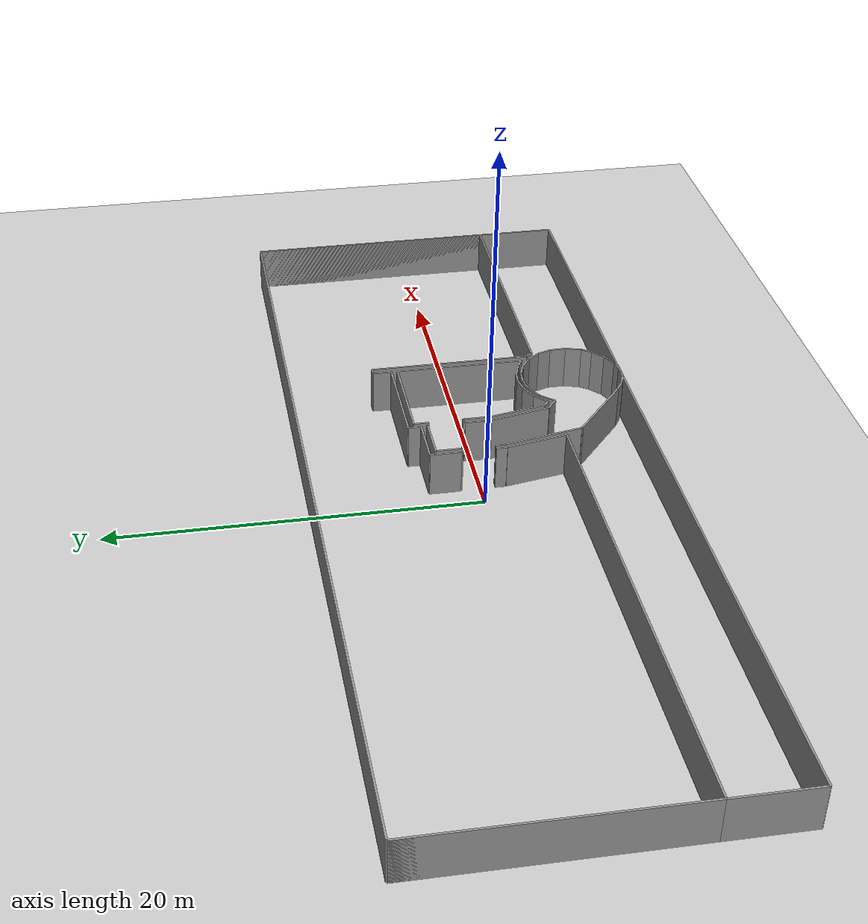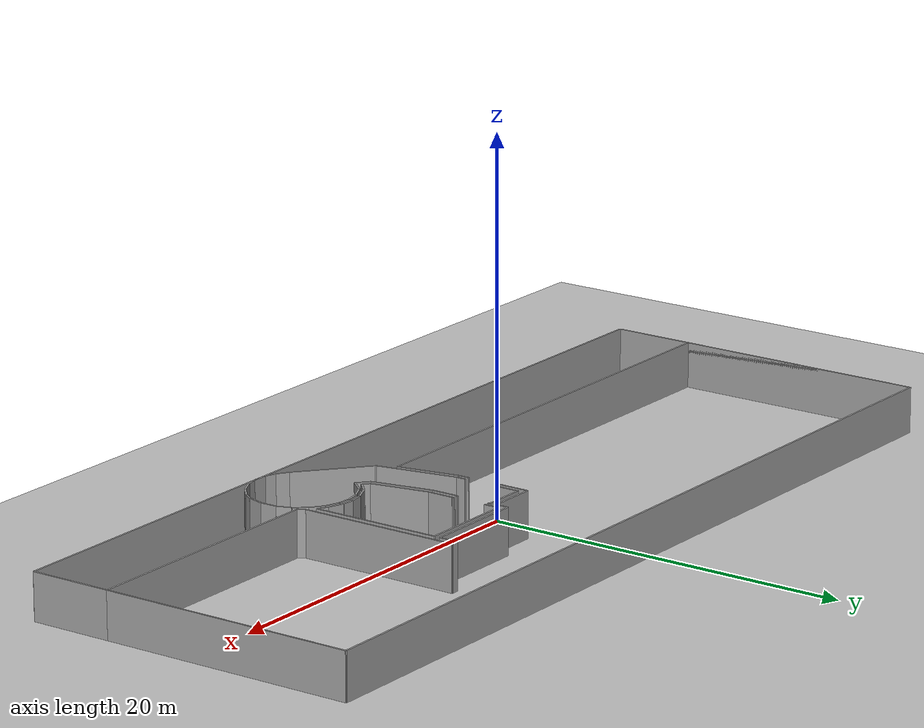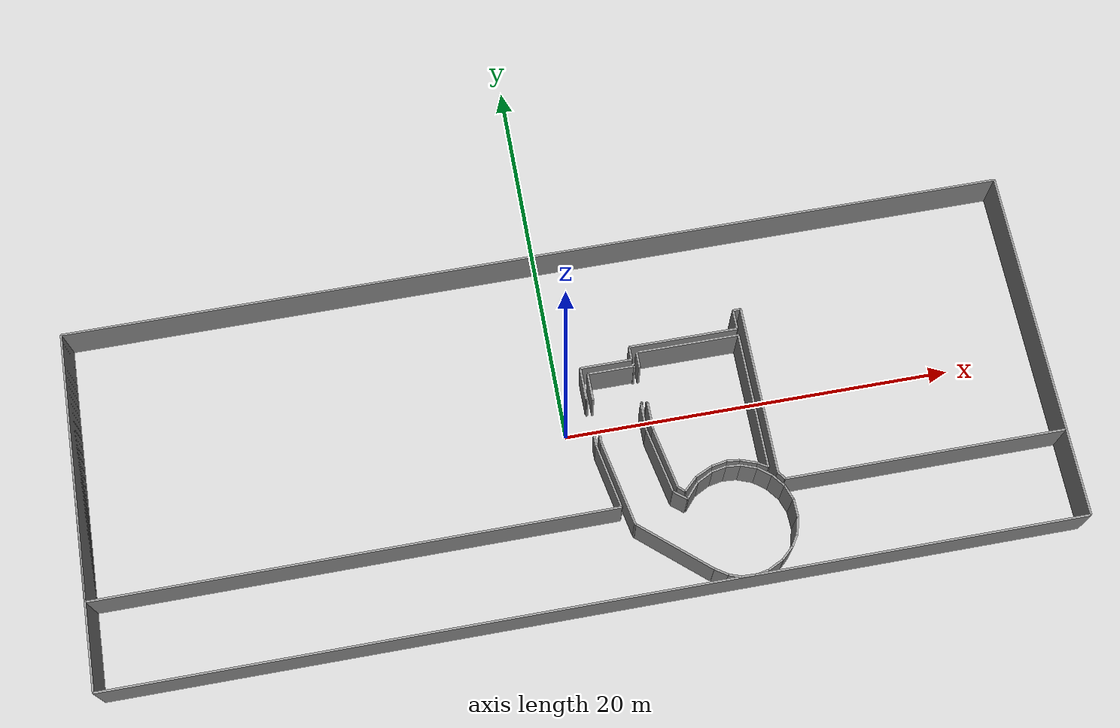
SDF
<sdf version="1.6">
  <world name="default">
    <light name="sun" type="directional">
      <cast_shadows>1</cast_shadows>
      <pose frame="">0 0 10 0 -0 0</pose>
      <diffuse>0.8 0.8 0.8 1</diffuse>
      <specular>0.1 0.1 0.1 1</specular>
      <attenuation>
        <range>1000</range>
        <constant>0.9</constant>
        <linear>0.01</linear>
        <quadratic>0.001</quadratic>
      </attenuation>
      <direction>-0.5 0.5 -1</direction>
    </light>
    <model name="ground_plane">
      <static>1</static>
      <link name="link">
        <collision name="collision">
          <geometry>
            <plane>
              <normal>0 0 1</normal>
              <size>100 100</size>
            </plane>
          </geometry>
          <surface>
            <friction>
              <ode>
                <mu>100</mu>
                <mu2>50</mu2>
              </ode>
              <torsional>
                <ode />
              </torsional>
            </friction>
            <contact>
              <ode />
            </contact>
            <bounce />
          </surface>
          <max_contacts>10</max_contacts>
        </collision>
        <visual name="visual">
          <cast_shadows>0</cast_shadows>
          <geometry>
            <plane>
              <normal>0 0 1</normal>
              <size>100 100</size>
            </plane>
          </geometry>
          <material>
            <script>
              <uri>file://media/materials/scripts/gazebo.material</uri>
              <name>Gazebo/Grey</name>
            </script>
          </material>
        </visual>
        <self_collide>0</self_collide>
        <kinematic>0</kinematic>
        <gravity>1</gravity>
      </link>
    </model>
    <gravity>0 0 -9.8</gravity>
    <magnetic_field>6e-06 2.3e-05 -4.2e-05</magnetic_field>
    <atmosphere type="adiabatic" />
    <physics default="0" name="default_physics" type="ode">
      <max_step_size>0.001</max_step_size>
      <real_time_factor>1</real_time_factor>
      <real_time_update_rate>1000</real_time_update_rate>
    </physics>
    <scene>
      <ambient>0.4 0.4 0.4 1</ambient>
      <background>0.7 0.7 0.7 1</background>
      <shadows>1</shadows>
    </scene>
    <spherical_coordinates>
      <surface_model>EARTH_WGS84</surface_model>
      <latitude_deg>0</latitude_deg>
      <longitude_deg>0</longitude_deg>
      <elevation>0</elevation>
      <heading_deg>0</heading_deg>
    </spherical_coordinates>
  <model name="0510028106_Layout1">
		<static>1</static>
		<link name="Wall_0">
			<collision name="Wall_0_Collision">
				<geometry>
					<box>
						<size>13.9522704884 0.1 2.5</size>
					</box>
				</geometry>
				<pose frame="">6.97613524421 0 1.25 0 0 0</pose>
			</collision>
			<visual name="Wall_0_Visual">
				<pose frame="">6.97613524421 0 1.25 0 0 0</pose>
				<geometry>
					<box>
						<size>13.9522704884 0.1 2.5</size>
					</box>
				</geometry>
				<material>
					<script>
						<uri>file://media/materials/scripts/gazebo.material</uri>
						<name>Gazebo/Grey</name>
					</script>
					<ambient>1 1 1 1</ambient>
				</material>
			</visual>
			<pose frame="">0.0 -13.9522704884 0 0 0 1.57079632679</pose>
		</link>
		<link name="Wall_1">
			<collision name="Wall_1_Collision">
				<geometry>
					<box>
						<size>48.8797229019 0.1 2.5</size>
					</box>
				</geometry>
				<pose frame="">24.439861451 0 1.25 0 0 0</pose>
			</collision>
			<visual name="Wall_1_Visual">
				<pose frame="">24.439861451 0 1.25 0 0 0</pose>
				<geometry>
					<box>
						<size>48.8797229019 0.1 2.5</size>
					</box>
				</geometry>
				<material>
					<script>
						<uri>file://media/materials/scripts/gazebo.material</uri>
						<name>Gazebo/Grey</name>
					</script>
					<ambient>1 1 1 1</ambient>
				</material>
			</visual>
			<pose frame="">0.0 -0.0 0 0 0 0.0</pose>
		</link>
		<link name="Wall_2">
			<collision name="Wall_2_Collision">
				<geometry>
					<box>
						<size>13.9220184944 0.1 2.5</size>
					</box>
				</geometry>
				<pose frame="">6.9610092472 0 1.25 0 0 0</pose>
			</collision>
			<visual name="Wall_2_Visual">
				<pose frame="">6.9610092472 0 1.25 0 0 0</pose>
				<geometry>
					<box>
						<size>13.9220184944 0.1 2.5</size>
					</box>
				</geometry>
				<material>
					<script>
						<uri>file://media/materials/scripts/gazebo.material</uri>
						<name>Gazebo/Grey</name>
					</script>
					<ambient>1 1 1 1</ambient>
				</material>
			</visual>
			<pose frame="">48.8797229019 -0.0 0 0 0 -1.57079632679</pose>
		</link>
		<link name="Wall_3">
			<collision name="Wall_3_Collision">
				<geometry>
					<box>
						<size>14.3327083797 0.1 2.5</size>
					</box>
				</geometry>
				<pose frame="">7.16635418984 0 1.25 0 0 0</pose>
			</collision>
			<visual name="Wall_3_Visual">
				<pose frame="">7.16635418984 0 1.25 0 0 0</pose>
				<geometry>
					<box>
						<size>14.3327083797 0.1 2.5</size>
					</box>
				</geometry>
				<material>
					<script>
						<uri>file://media/materials/scripts/gazebo.material</uri>
						<name>Gazebo/Grey</name>
					</script>
					<ambient>1 1 1 1</ambient>
				</material>
			</visual>
			<pose frame="">48.8797229019 -13.9220184944 0 0 0 3.14159265359</pose>
		</link>
		<link name="Wall_4">
			<collision name="Wall_4_Collision">
				<geometry>
					<box>
						<size>0.469867818756 0.1 2.5</size>
					</box>
				</geometry>
				<pose frame="">0.234933909378 0 1.25 0 0 0</pose>
			</collision>
			<visual name="Wall_4_Visual">
				<pose frame="">0.234933909378 0 1.25 0 0 0</pose>
				<geometry>
					<box>
						<size>0.469867818756 0.1 2.5</size>
					</box>
				</geometry>
				<material>
					<script>
						<uri>file://media/materials/scripts/gazebo.material</uri>
						<name>Gazebo/Grey</name>
					</script>
					<ambient>1 1 1 1</ambient>
				</material>
			</visual>
			<pose frame="">34.5470145222 -13.9220184944 0 0 0 2.22381992667</pose>
		</link>
		<link name="Wall_5">
			<collision name="Wall_5_Collision">
				<geometry>
					<box>
						<size>8.79544948997 0.1 2.5</size>
					</box>
				</geometry>
				<pose frame="">4.39772474499 0 1.25 0 0 0</pose>
			</collision>
			<visual name="Wall_5_Visual">
				<pose frame="">4.39772474499 0 1.25 0 0 0</pose>
				<geometry>
					<box>
						<size>8.79544948997 0.1 2.5</size>
					</box>
				</geometry>
				<material>
					<script>
						<uri>file://media/materials/scripts/gazebo.material</uri>
						<name>Gazebo/Grey</name>
					</script>
					<ambient>1 1 1 1</ambient>
				</material>
			</visual>
			<pose frame="">34.2615272173 -13.5488258286 0 0 0 1.57079632679</pose>
		</link>
		<link name="Wall_6">
			<collision name="Wall_6_Collision">
				<geometry>
					<box>
						<size>0.395182560615 0.1 2.5</size>
					</box>
				</geometry>
				<pose frame="">0.197591280308 0 1.25 0 0 0</pose>
			</collision>
			<visual name="Wall_6_Visual">
				<pose frame="">0.197591280308 0 1.25 0 0 0</pose>
				<geometry>
					<box>
						<size>0.395182560615 0.1 2.5</size>
					</box>
				</geometry>
				<material>
					<script>
						<uri>file://media/materials/scripts/gazebo.material</uri>
						<name>Gazebo/Grey</name>
					</script>
					<ambient>1 1 1 1</ambient>
				</material>
			</visual>
			<pose frame="">34.2615272173 -4.75337633862 0 0 0 3.14159265359</pose>
		</link>
		<link name="Wall_7">
			<collision name="Wall_7_Collision">
				<geometry>
					<box>
						<size>1.01013696018 0.1 2.5</size>
					</box>
				</geometry>
				<pose frame="">0.505068480092 0 1.25 0 0 0</pose>
			</collision>
			<visual name="Wall_7_Visual">
				<pose frame="">0.505068480092 0 1.25 0 0 0</pose>
				<geometry>
					<box>
						<size>1.01013696018 0.1 2.5</size>
					</box>
				</geometry>
				<material>
					<script>
						<uri>file://media/materials/scripts/gazebo.material</uri>
						<name>Gazebo/Grey</name>
					</script>
					<ambient>1 1 1 1</ambient>
				</material>
			</visual>
			<pose frame="">33.8663446566 -4.75337633862 0 0 0 -1.57079632679</pose>
		</link>
		<link name="Wall_8">
			<collision name="Wall_8_Collision">
				<geometry>
					<box>
						<size>5.59725444088 0.1 2.5</size>
					</box>
				</geometry>
				<pose frame="">2.79862722044 0 1.25 0 0 0</pose>
			</collision>
			<visual name="Wall_8_Visual">
				<pose frame="">2.79862722044 0 1.25 0 0 0</pose>
				<geometry>
					<box>
						<size>5.59725444088 0.1 2.5</size>
					</box>
				</geometry>
				<material>
					<script>
						<uri>file://media/materials/scripts/gazebo.material</uri>
						<name>Gazebo/Grey</name>
					</script>
					<ambient>1 1 1 1</ambient>
				</material>
			</visual>
			<pose frame="">33.8663446566 -5.7635132988 0 0 0 3.14159265359</pose>
		</link>
		<link name="Wall_9">
			<collision name="Wall_9_Collision">
				<geometry>
					<box>
						<size>0.687533763386 0.1 2.5</size>
					</box>
				</geometry>
				<pose frame="">0.343766881693 0 1.25 0 0 0</pose>
			</collision>
			<visual name="Wall_9_Visual">
				<pose frame="">0.343766881693 0 1.25 0 0 0</pose>
				<geometry>
					<box>
						<size>0.687533763386 0.1 2.5</size>
					</box>
				</geometry>
				<material>
					<script>
						<uri>file://media/materials/scripts/gazebo.material</uri>
						<name>Gazebo/Grey</name>
					</script>
					<ambient>1 1 1 1</ambient>
				</material>
			</visual>
			<pose frame="">28.2690902158 -5.7635132988 0 0 0 -1.57079632679</pose>
		</link>
		<link name="Wall_10">
			<collision name="Wall_10_Collision">
				<geometry>
					<box>
						<size>2.63815183196 0.1 2.5</size>
					</box>
				</geometry>
				<pose frame="">1.31907591598 0 1.25 0 0 0</pose>
			</collision>
			<visual name="Wall_10_Visual">
				<pose frame="">1.31907591598 0 1.25 0 0 0</pose>
				<geometry>
					<box>
						<size>2.63815183196 0.1 2.5</size>
					</box>
				</geometry>
				<material>
					<script>
						<uri>file://media/materials/scripts/gazebo.material</uri>
						<name>Gazebo/Grey</name>
					</script>
					<ambient>1 1 1 1</ambient>
				</material>
			</visual>
			<pose frame="">28.2690902158 -6.45104706219 0 0 0 3.14159265359</pose>
		</link>
		<link name="Wall_11">
			<collision name="Wall_11_Collision">
				<geometry>
					<box>
						<size>1.67974832375 0.1 2.5</size>
					</box>
				</geometry>
				<pose frame="">0.839874161874 0 1.25 0 0 0</pose>
			</collision>
			<visual name="Wall_11_Visual">
				<pose frame="">0.839874161874 0 1.25 0 0 0</pose>
				<geometry>
					<box>
						<size>1.67974832375 0.1 2.5</size>
					</box>
				</geometry>
				<material>
					<script>
						<uri>file://media/materials/scripts/gazebo.material</uri>
						<name>Gazebo/Grey</name>
					</script>
					<ambient>1 1 1 1</ambient>
				</material>
			</visual>
			<pose frame="">25.6309383838 -6.45104706219 0 0 0 -1.57079632679</pose>
		</link>
		<link name="Wall_12">
			<collision name="Wall_12_Collision">
				<geometry>
					<box>
						<size>0.0415647144809 0.1 2.5</size>
					</box>
				</geometry>
				<pose frame="">0.0207823572404 0 1.25 0 0 0</pose>
			</collision>
			<visual name="Wall_12_Visual">
				<pose frame="">0.0207823572404 0 1.25 0 0 0</pose>
				<geometry>
					<box>
						<size>0.0415647144809 0.1 2.5</size>
					</box>
				</geometry>
				<material>
					<script>
						<uri>file://media/materials/scripts/gazebo.material</uri>
						<name>Gazebo/Grey</name>
					</script>
					<ambient>1 1 1 1</ambient>
				</material>
			</visual>
			<pose frame="">25.6309383838 -8.13079538594 0 0 0 0.0</pose>
		</link>
		<link name="Wall_13">
			<collision name="Wall_13_Collision">
				<geometry>
					<box>
						<size>0.0812227906829 0.1 2.5</size>
					</box>
				</geometry>
				<pose frame="">0.0406113953415 0 1.25 0 0 0</pose>
			</collision>
			<visual name="Wall_13_Visual">
				<pose frame="">0.0406113953415 0 1.25 0 0 0</pose>
				<geometry>
					<box>
						<size>0.0812227906829 0.1 2.5</size>
					</box>
				</geometry>
				<material>
					<script>
						<uri>file://media/materials/scripts/gazebo.material</uri>
						<name>Gazebo/Grey</name>
					</script>
					<ambient>1 1 1 1</ambient>
				</material>
			</visual>
			<pose frame="">25.6725030983 -8.13079538594 0 0 0 -1.57079632679</pose>
		</link>
		<link name="Wall_14">
			<collision name="Wall_14_Collision">
				<geometry>
					<box>
						<size>0.588642791318 0.1 2.5</size>
					</box>
				</geometry>
				<pose frame="">0.294321395659 0 1.25 0 0 0</pose>
			</collision>
			<visual name="Wall_14_Visual">
				<pose frame="">0.294321395659 0 1.25 0 0 0</pose>
				<geometry>
					<box>
						<size>0.588642791318 0.1 2.5</size>
					</box>
				</geometry>
				<material>
					<script>
						<uri>file://media/materials/scripts/gazebo.material</uri>
						<name>Gazebo/Grey</name>
					</script>
					<ambient>1 1 1 1</ambient>
				</material>
			</visual>
			<pose frame="">25.6725030983 -9.97578569386 0 0 0 -1.57079632679</pose>
		</link>
		<link name="Wall_15">
			<collision name="Wall_15_Collision">
				<geometry>
					<box>
						<size>3.4107776043 0.1 2.5</size>
					</box>
				</geometry>
				<pose frame="">1.70538880215 0 1.25 0 0 0</pose>
			</collision>
			<visual name="Wall_15_Visual">
				<pose frame="">1.70538880215 0 1.25 0 0 0</pose>
				<geometry>
					<box>
						<size>3.4107776043 0.1 2.5</size>
					</box>
				</geometry>
				<material>
					<script>
						<uri>file://media/materials/scripts/gazebo.material</uri>
						<name>Gazebo/Grey</name>
					</script>
					<ambient>1 1 1 1</ambient>
				</material>
			</visual>
			<pose frame="">25.6725030983 -10.5644284852 0 0 0 -1.37911615983</pose>
		</link>
		<link name="Wall_16">
			<collision name="Wall_16_Collision">
				<geometry>
					<box>
						<size>26.3223151077 0.1 2.5</size>
					</box>
				</geometry>
				<pose frame="">13.1611575538 0 1.25 0 0 0</pose>
			</collision>
			<visual name="Wall_16_Visual">
				<pose frame="">13.1611575538 0 1.25 0 0 0</pose>
				<geometry>
					<box>
						<size>26.3223151077 0.1 2.5</size>
					</box>
				</geometry>
				<material>
					<script>
						<uri>file://media/materials/scripts/gazebo.material</uri>
						<name>Gazebo/Grey</name>
					</script>
					<ambient>1 1 1 1</ambient>
				</material>
			</visual>
			<pose frame="">26.3222854238 -13.9127395214 0 0 0 -3.14009084869</pose>
		</link>
		<link name="Wall_17">
			<collision name="Wall_17_Collision">
				<geometry>
					<box>
						<size>4.40999296401 0.1 2.5</size>
					</box>
				</geometry>
				<pose frame="">2.204996482 0 1.25 0 0 0</pose>
			</collision>
			<visual name="Wall_17_Visual">
				<pose frame="">2.204996482 0 1.25 0 0 0</pose>
				<geometry>
					<box>
						<size>4.40999296401 0.1 2.5</size>
					</box>
				</geometry>
				<material>
					<script>
						<uri>file://media/materials/scripts/gazebo.material</uri>
						<name>Gazebo/Grey</name>
					</script>
					<ambient>1 1 1 1</ambient>
				</material>
			</visual>
			<pose frame="">26.8126727891 -14.82716324 0 0 0 1.76771706361</pose>
		</link>
		<link name="Wall_18">
			<collision name="Wall_18_Collision">
				<geometry>
					<box>
						<size>0.505640471575 0.1 2.5</size>
					</box>
				</geometry>
				<pose frame="">0.252820235788 0 1.25 0 0 0</pose>
			</collision>
			<visual name="Wall_18_Visual">
				<pose frame="">0.252820235788 0 1.25 0 0 0</pose>
				<geometry>
					<box>
						<size>0.505640471575 0.1 2.5</size>
					</box>
				</geometry>
				<material>
					<script>
						<uri>file://media/materials/scripts/gazebo.material</uri>
						<name>Gazebo/Grey</name>
					</script>
					<ambient>1 1 1 1</ambient>
				</material>
			</visual>
			<pose frame="">25.9498554133 -10.5023991865 0 0 0 1.57079632679</pose>
		</link>
		<link name="Wall_19">
			<collision name="Wall_19_Collision">
				<geometry>
					<box>
						<size>1.4156153675 0.1 2.5</size>
					</box>
				</geometry>
				<pose frame="">0.707807683752 0 1.25 0 0 0</pose>
			</collision>
			<visual name="Wall_19_Visual">
				<pose frame="">0.707807683752 0 1.25 0 0 0</pose>
				<geometry>
					<box>
						<size>1.4156153675 0.1 2.5</size>
					</box>
				</geometry>
				<material>
					<script>
						<uri>file://media/materials/scripts/gazebo.material</uri>
						<name>Gazebo/Grey</name>
					</script>
					<ambient>1 1 1 1</ambient>
				</material>
			</visual>
			<pose frame="">25.9498554133 -8.22816104738 0 0 0 1.57079632679</pose>
		</link>
		<link name="Wall_20">
			<collision name="Wall_20_Collision">
				<geometry>
					<box>
						<size>2.38113699196 0.1 2.5</size>
					</box>
				</geometry>
				<pose frame="">1.19056849598 0 1.25 0 0 0</pose>
			</collision>
			<visual name="Wall_20_Visual">
				<pose frame="">1.19056849598 0 1.25 0 0 0</pose>
				<geometry>
					<box>
						<size>2.38113699196 0.1 2.5</size>
					</box>
				</geometry>
				<material>
					<script>
						<uri>file://media/materials/scripts/gazebo.material</uri>
						<name>Gazebo/Grey</name>
					</script>
					<ambient>1 1 1 1</ambient>
				</material>
			</visual>
			<pose frame="">25.9498554133 -6.81254567988 0 0 0 0.0</pose>
		</link>
		<link name="Wall_21">
			<collision name="Wall_21_Collision">
				<geometry>
					<box>
						<size>0.101178938002 0.1 2.5</size>
					</box>
				</geometry>
				<pose frame="">0.0505894690012 0 1.25 0 0 0</pose>
			</collision>
			<visual name="Wall_21_Visual">
				<pose frame="">0.0505894690012 0 1.25 0 0 0</pose>
				<geometry>
					<box>
						<size>0.101178938002 0.1 2.5</size>
					</box>
				</geometry>
				<material>
					<script>
						<uri>file://media/materials/scripts/gazebo.material</uri>
						<name>Gazebo/Grey</name>
					</script>
					<ambient>1 1 1 1</ambient>
				</material>
			</visual>
			<pose frame="">28.3309924052 -6.81254567988 0 0 0 -1.57079632679</pose>
		</link>
		<link name="Wall_22">
			<collision name="Wall_22_Collision">
				<geometry>
					<box>
						<size>0.109822364867 0.1 2.5</size>
					</box>
				</geometry>
				<pose frame="">0.0549111824335 0 1.25 0 0 0</pose>
			</collision>
			<visual name="Wall_22_Visual">
				<pose frame="">0.0549111824335 0 1.25 0 0 0</pose>
				<geometry>
					<box>
						<size>0.109822364867 0.1 2.5</size>
					</box>
				</geometry>
				<material>
					<script>
						<uri>file://media/materials/scripts/gazebo.material</uri>
						<name>Gazebo/Grey</name>
					</script>
					<ambient>1 1 1 1</ambient>
				</material>
			</visual>
			<pose frame="">28.3309924052 -8.72337856303 0 0 0 -1.57079632679</pose>
		</link>
		<link name="Wall_23">
			<collision name="Wall_23_Collision">
				<geometry>
					<box>
						<size>0.0447424449458 0.1 2.5</size>
					</box>
				</geometry>
				<pose frame="">0.0223712224729 0 1.25 0 0 0</pose>
			</collision>
			<visual name="Wall_23_Visual">
				<pose frame="">0.0223712224729 0 1.25 0 0 0</pose>
				<geometry>
					<box>
						<size>0.0447424449458 0.1 2.5</size>
					</box>
				</geometry>
				<material>
					<script>
						<uri>file://media/materials/scripts/gazebo.material</uri>
						<name>Gazebo/Grey</name>
					</script>
					<ambient>1 1 1 1</ambient>
				</material>
			</visual>
			<pose frame="">28.3309924052 -8.8332009279 0 0 0 3.14159265359</pose>
		</link>
		<link name="Wall_24">
			<collision name="Wall_24_Collision">
				<geometry>
					<box>
						<size>1.41930153484 0.1 2.5</size>
					</box>
				</geometry>
				<pose frame="">0.709650767422 0 1.25 0 0 0</pose>
			</collision>
			<visual name="Wall_24_Visual">
				<pose frame="">0.709650767422 0 1.25 0 0 0</pose>
				<geometry>
					<box>
						<size>1.41930153484 0.1 2.5</size>
					</box>
				</geometry>
				<material>
					<script>
						<uri>file://media/materials/scripts/gazebo.material</uri>
						<name>Gazebo/Grey</name>
					</script>
					<ambient>1 1 1 1</ambient>
				</material>
			</visual>
			<pose frame="">28.2862499603 -8.8332009279 0 0 0 -1.57079632679</pose>
		</link>
		<link name="Wall_25">
			<collision name="Wall_25_Collision">
				<geometry>
					<box>
						<size>3.39074175964 0.1 2.5</size>
					</box>
				</geometry>
				<pose frame="">1.69537087982 0 1.25 0 0 0</pose>
			</collision>
			<visual name="Wall_25_Visual">
				<pose frame="">1.69537087982 0 1.25 0 0 0</pose>
				<geometry>
					<box>
						<size>3.39074175964 0.1 2.5</size>
					</box>
				</geometry>
				<material>
					<script>
						<uri>file://media/materials/scripts/gazebo.material</uri>
						<name>Gazebo/Grey</name>
					</script>
					<ambient>1 1 1 1</ambient>
				</material>
			</visual>
			<pose frame="">28.2862499603 -10.2525024627 0 0 0 -1.36871763192</pose>
		</link>
		<link name="Wall_26">
			<collision name="Wall_26_Collision">
				<geometry>
					<box>
						<size>0.808374497937 0.1 2.5</size>
					</box>
				</geometry>
				<pose frame="">0.404187248968 0 1.25 0 0 0</pose>
			</collision>
			<visual name="Wall_26_Visual">
				<pose frame="">0.404187248968 0 1.25 0 0 0</pose>
				<geometry>
					<box>
						<size>0.808374497937 0.1 2.5</size>
					</box>
				</geometry>
				<material>
					<script>
						<uri>file://media/materials/scripts/gazebo.material</uri>
						<name>Gazebo/Grey</name>
					</script>
					<ambient>1 1 1 1</ambient>
				</material>
			</visual>
			<pose frame="">28.9667927166 -13.5742476723 0 0 0 -0.684269141099</pose>
		</link>
		<link name="Wall_27">
			<collision name="Wall_27_Collision">
				<geometry>
					<box>
						<size>0.965600646141 0.1 2.5</size>
					</box>
				</geometry>
				<pose frame="">0.482800323071 0 1.25 0 0 0</pose>
			</collision>
			<visual name="Wall_27_Visual">
				<pose frame="">0.482800323071 0 1.25 0 0 0</pose>
				<geometry>
					<box>
						<size>0.965600646141 0.1 2.5</size>
					</box>
				</geometry>
				<material>
					<script>
						<uri>file://media/materials/scripts/gazebo.material</uri>
						<name>Gazebo/Grey</name>
					</script>
					<ambient>1 1 1 1</ambient>
				</material>
			</visual>
			<pose frame="">29.5931869459 -14.0852267311 0 0 0 0.84976207827</pose>
		</link>
		<link name="Wall_28">
			<collision name="Wall_28_Collision">
				<geometry>
					<box>
						<size>0.912011761362 0.1 2.5</size>
					</box>
				</geometry>
				<pose frame="">0.456005880681 0 1.25 0 0 0</pose>
			</collision>
			<visual name="Wall_28_Visual">
				<pose frame="">0.456005880681 0 1.25 0 0 0</pose>
				<geometry>
					<box>
						<size>0.912011761362 0.1 2.5</size>
					</box>
				</geometry>
				<material>
					<script>
						<uri>file://media/materials/scripts/gazebo.material</uri>
						<name>Gazebo/Grey</name>
					</script>
					<ambient>1 1 1 1</ambient>
				</material>
			</visual>
			<pose frame="">30.2306396771 -13.3599415298 0 0 0 0.482472141549</pose>
		</link>
		<link name="Wall_29">
			<collision name="Wall_29_Collision">
				<geometry>
					<box>
						<size>0.755442413472 0.1 2.5</size>
					</box>
				</geometry>
				<pose frame="">0.377721206736 0 1.25 0 0 0</pose>
			</collision>
			<visual name="Wall_29_Visual">
				<pose frame="">0.377721206736 0 1.25 0 0 0</pose>
				<geometry>
					<box>
						<size>0.755442413472 0.1 2.5</size>
					</box>
				</geometry>
				<material>
					<script>
						<uri>file://media/materials/scripts/gazebo.material</uri>
						<name>Gazebo/Grey</name>
					</script>
					<ambient>1 1 1 1</ambient>
				</material>
			</visual>
			<pose frame="">31.0385458705 -12.9367949411 0 0 0 0.190267908644</pose>
		</link>
		<link name="Wall_30">
			<collision name="Wall_30_Collision">
				<geometry>
					<box>
						<size>0.738388303933 0.1 2.5</size>
					</box>
				</geometry>
				<pose frame="">0.369194151967 0 1.25 0 0 0</pose>
			</collision>
			<visual name="Wall_30_Visual">
				<pose frame="">0.369194151967 0 1.25 0 0 0</pose>
				<geometry>
					<box>
						<size>0.738388303933 0.1 2.5</size>
					</box>
				</geometry>
				<material>
					<script>
						<uri>file://media/materials/scripts/gazebo.material</uri>
						<name>Gazebo/Grey</name>
					</script>
					<ambient>1 1 1 1</ambient>
				</material>
			</visual>
			<pose frame="">31.7803552703 -12.7939241794 0 0 0 -0.0744349842077</pose>
		</link>
		<link name="Wall_31">
			<collision name="Wall_31_Collision">
				<geometry>
					<box>
						<size>0.83801330239 0.1 2.5</size>
					</box>
				</geometry>
				<pose frame="">0.419006651195 0 1.25 0 0 0</pose>
			</collision>
			<visual name="Wall_31_Visual">
				<pose frame="">0.419006651195 0 1.25 0 0 0</pose>
				<geometry>
					<box>
						<size>0.83801330239 0.1 2.5</size>
					</box>
				</geometry>
				<material>
					<script>
						<uri>file://media/materials/scripts/gazebo.material</uri>
						<name>Gazebo/Grey</name>
					</script>
					<ambient>1 1 1 1</ambient>
				</material>
			</visual>
			<pose frame="">32.5166989736 -12.8488353618 0 0 0 -0.354900569406</pose>
		</link>
		<link name="Wall_32">
			<collision name="Wall_32_Collision">
				<geometry>
					<box>
						<size>0.808006308701 0.1 2.5</size>
					</box>
				</geometry>
				<pose frame="">0.404003154351 0 1.25 0 0 0</pose>
			</collision>
			<visual name="Wall_32_Visual">
				<pose frame="">0.404003154351 0 1.25 0 0 0</pose>
				<geometry>
					<box>
						<size>0.808006308701 0.1 2.5</size>
					</box>
				</geometry>
				<material>
					<script>
						<uri>file://media/materials/scripts/gazebo.material</uri>
						<name>Gazebo/Grey</name>
					</script>
					<ambient>1 1 1 1</ambient>
				</material>
			</visual>
			<pose frame="">33.302488163 -13.1400425816 0 0 0 -0.654544646978</pose>
		</link>
		<link name="Wall_33">
			<collision name="Wall_33_Collision">
				<geometry>
					<box>
						<size>0.805542305307 0.1 2.5</size>
					</box>
				</geometry>
				<pose frame="">0.402771152653 0 1.25 0 0 0</pose>
			</collision>
			<visual name="Wall_33_Visual">
				<pose frame="">0.402771152653 0 1.25 0 0 0</pose>
				<geometry>
					<box>
						<size>0.805542305307 0.1 2.5</size>
					</box>
				</geometry>
				<material>
					<script>
						<uri>file://media/materials/scripts/gazebo.material</uri>
						<name>Gazebo/Grey</name>
					</script>
					<ambient>1 1 1 1</ambient>
				</material>
			</visual>
			<pose frame="">33.9434999523 -13.6319552576 0 0 0 -0.913503642041</pose>
		</link>
		<link name="Wall_34">
			<collision name="Wall_34_Collision">
				<geometry>
					<box>
						<size>0.7995776071 0.1 2.5</size>
					</box>
				</geometry>
				<pose frame="">0.39978880355 0 1.25 0 0 0</pose>
			</collision>
			<visual name="Wall_34_Visual">
				<pose frame="">0.39978880355 0 1.25 0 0 0</pose>
				<geometry>
					<box>
						<size>0.7995776071 0.1 2.5</size>
					</box>
				</geometry>
				<material>
					<script>
						<uri>file://media/materials/scripts/gazebo.material</uri>
						<name>Gazebo/Grey</name>
					</script>
					<ambient>1 1 1 1</ambient>
				</material>
			</visual>
			<pose frame="">34.4356668467 -14.2696622073 0 0 0 -1.22400826188</pose>
		</link>
		<link name="Wall_35">
			<collision name="Wall_35_Collision">
				<geometry>
					<box>
						<size>0.910415676528 0.1 2.5</size>
					</box>
				</geometry>
				<pose frame="">0.455207838264 0 1.25 0 0 0</pose>
			</collision>
			<visual name="Wall_35_Visual">
				<pose frame="">0.455207838264 0 1.25 0 0 0</pose>
				<geometry>
					<box>
						<size>0.910415676528 0.1 2.5</size>
					</box>
				</geometry>
				<material>
					<script>
						<uri>file://media/materials/scripts/gazebo.material</uri>
						<name>Gazebo/Grey</name>
					</script>
					<ambient>1 1 1 1</ambient>
				</material>
			</visual>
			<pose frame="">34.7074263561 -15.0216403445 0 0 0 -1.54454537517</pose>
		</link>
		<link name="Wall_36">
			<collision name="Wall_36_Collision">
				<geometry>
					<box>
						<size>0.908086548098 0.1 2.5</size>
					</box>
				</geometry>
				<pose frame="">0.454043274049 0 1.25 0 0 0</pose>
			</collision>
			<visual name="Wall_36_Visual">
				<pose frame="">0.454043274049 0 1.25 0 0 0</pose>
				<geometry>
					<box>
						<size>0.908086548098 0.1 2.5</size>
					</box>
				</geometry>
				<material>
					<script>
						<uri>file://media/materials/scripts/gazebo.material</uri>
						<name>Gazebo/Grey</name>
					</script>
					<ambient>1 1 1 1</ambient>
				</material>
			</visual>
			<pose frame="">34.7313228892 -15.9317423496 0 0 0 -1.8466733795</pose>
		</link>
		<link name="Wall_37">
			<collision name="Wall_37_Collision">
				<geometry>
					<box>
						<size>0.630918088737 0.1 2.5</size>
					</box>
				</geometry>
				<pose frame="">0.315459044369 0 1.25 0 0 0</pose>
			</collision>
			<visual name="Wall_37_Visual">
				<pose frame="">0.315459044369 0 1.25 0 0 0</pose>
				<geometry>
					<box>
						<size>0.630918088737 0.1 2.5</size>
					</box>
				</geometry>
				<material>
					<script>
						<uri>file://media/materials/scripts/gazebo.material</uri>
						<name>Gazebo/Grey</name>
					</script>
					<ambient>1 1 1 1</ambient>
				</material>
			</visual>
			<pose frame="">34.4839683498 -16.8054911182 0 0 0 -2.15147898956</pose>
		</link>
		<link name="Wall_38">
			<collision name="Wall_38_Collision">
				<geometry>
					<box>
						<size>0.8381012138 0.1 2.5</size>
					</box>
				</geometry>
				<pose frame="">0.4190506069 0 1.25 0 0 0</pose>
			</collision>
			<visual name="Wall_38_Visual">
				<pose frame="">0.4190506069 0 1.25 0 0 0</pose>
				<geometry>
					<box>
						<size>0.8381012138 0.1 2.5</size>
					</box>
				</geometry>
				<material>
					<script>
						<uri>file://media/materials/scripts/gazebo.material</uri>
						<name>Gazebo/Grey</name>
					</script>
					<ambient>1 1 1 1</ambient>
				</material>
			</visual>
			<pose frame="">34.1378499476 -17.3329943754 0 0 0 -2.40178820617</pose>
		</link>
		<link name="Wall_39">
			<collision name="Wall_39_Collision">
				<geometry>
					<box>
						<size>0.861357765186 0.1 2.5</size>
					</box>
				</geometry>
				<pose frame="">0.430678882593 0 1.25 0 0 0</pose>
			</collision>
			<visual name="Wall_39_Visual">
				<pose frame="">0.430678882593 0 1.25 0 0 0</pose>
				<geometry>
					<box>
						<size>0.861357765186 0.1 2.5</size>
					</box>
				</geometry>
				<material>
					<script>
						<uri>file://media/materials/scripts/gazebo.material</uri>
						<name>Gazebo/Grey</name>
					</script>
					<ambient>1 1 1 1</ambient>
				</material>
			</visual>
			<pose frame="">33.518828053 -17.8979948521 0 0 0 -2.68791039579</pose>
		</link>
		<link name="Wall_40">
			<collision name="Wall_40_Collision">
				<geometry>
					<box>
						<size>0.555649774818 0.1 2.5</size>
					</box>
				</geometry>
				<pose frame="">0.277824887409 0 1.25 0 0 0</pose>
			</collision>
			<visual name="Wall_40_Visual">
				<pose frame="">0.277824887409 0 1.25 0 0 0</pose>
				<geometry>
					<box>
						<size>0.555649774818 0.1 2.5</size>
					</box>
				</geometry>
				<material>
					<script>
						<uri>file://media/materials/scripts/gazebo.material</uri>
						<name>Gazebo/Grey</name>
					</script>
					<ambient>1 1 1 1</ambient>
				</material>
			</visual>
			<pose frame="">32.7446058025 -18.2755092313 0 0 0 -2.94240256897</pose>
		</link>
		<link name="Wall_41">
			<collision name="Wall_41_Collision">
				<geometry>
					<box>
						<size>0.832044556252 0.1 2.5</size>
					</box>
				</geometry>
				<pose frame="">0.416022278126 0 1.25 0 0 0</pose>
			</collision>
			<visual name="Wall_41_Visual">
				<pose frame="">0.416022278126 0 1.25 0 0 0</pose>
				<geometry>
					<box>
						<size>0.832044556252 0.1 2.5</size>
					</box>
				</geometry>
				<material>
					<script>
						<uri>file://media/materials/scripts/gazebo.material</uri>
						<name>Gazebo/Grey</name>
					</script>
					<ambient>1 1 1 1</ambient>
				</material>
			</visual>
			<pose frame="">32.1999428009 -18.3854587054 0 0 0 3.10706037608</pose>
		</link>
		<link name="Wall_42">
			<collision name="Wall_42_Collision">
				<geometry>
					<box>
						<size>0.625342657847 0.1 2.5</size>
					</box>
				</geometry>
				<pose frame="">0.312671328924 0 1.25 0 0 0</pose>
			</collision>
			<visual name="Wall_42_Visual">
				<pose frame="">0.312671328924 0 1.25 0 0 0</pose>
				<geometry>
					<box>
						<size>0.625342657847 0.1 2.5</size>
					</box>
				</geometry>
				<material>
					<script>
						<uri>file://media/materials/scripts/gazebo.material</uri>
						<name>Gazebo/Grey</name>
					</script>
					<ambient>1 1 1 1</ambient>
				</material>
			</visual>
			<pose frame="">31.3683942928 -18.356732022 0 0 0 2.79850034832</pose>
		</link>
		<link name="Wall_43">
			<collision name="Wall_43_Collision">
				<geometry>
					<box>
						<size>0.726135817459 0.1 2.5</size>
					</box>
				</geometry>
				<pose frame="">0.363067908729 0 1.25 0 0 0</pose>
			</collision>
			<visual name="Wall_43_Visual">
				<pose frame="">0.363067908729 0 1.25 0 0 0</pose>
				<geometry>
					<box>
						<size>0.726135817459 0.1 2.5</size>
					</box>
				</geometry>
				<material>
					<script>
						<uri>file://media/materials/scripts/gazebo.material</uri>
						<name>Gazebo/Grey</name>
					</script>
					<ambient>1 1 1 1</ambient>
				</material>
			</visual>
			<pose frame="">30.779497283 -18.1463662652 0 0 0 2.55985301617</pose>
		</link>
		<link name="Wall_44">
			<collision name="Wall_44_Collision">
				<geometry>
					<box>
						<size>4.35664302692 0.1 2.5</size>
					</box>
				</geometry>
				<pose frame="">2.17832151346 0 1.25 0 0 0</pose>
			</collision>
			<visual name="Wall_44_Visual">
				<pose frame="">2.17832151346 0 1.25 0 0 0</pose>
				<geometry>
					<box>
						<size>4.35664302692 0.1 2.5</size>
					</box>
				</geometry>
				<material>
					<script>
						<uri>file://media/materials/scripts/gazebo.material</uri>
						<name>Gazebo/Grey</name>
					</script>
					<ambient>1 1 1 1</ambient>
				</material>
			</visual>
			<pose frame="">30.1728049827 -17.747370428 0 0 0 2.43245688461</pose>
		</link>
		<link name="Wall_45">
			<collision name="Wall_45_Collision">
				<geometry>
					<box>
						<size>0.0991088436428 0.1 2.5</size>
					</box>
				</geometry>
				<pose frame="">0.0495544218214 0 1.25 0 0 0</pose>
			</collision>
			<visual name="Wall_45_Visual">
				<pose frame="">0.0495544218214 0 1.25 0 0 0</pose>
				<geometry>
					<box>
						<size>0.0991088436428 0.1 2.5</size>
					</box>
				</geometry>
				<material>
					<script>
						<uri>file://media/materials/scripts/gazebo.material</uri>
						<name>Gazebo/Grey</name>
					</script>
					<ambient>1 1 1 1</ambient>
				</material>
			</visual>
			<pose frame="">26.8664399886 -14.9104197782 0 0 0 2.14421440777</pose>
		</link>
		<link name="Wall_46">
			<collision name="Wall_46_Collision">
				<geometry>
					<box>
						<size>3.17851644416 0.1 2.5</size>
					</box>
				</geometry>
				<pose frame="">1.58925822208 0 1.25 0 0 0</pose>
			</collision>
			<visual name="Wall_46_Visual">
				<pose frame="">1.58925822208 0 1.25 0 0 0</pose>
				<geometry>
					<box>
						<size>3.17851644416 0.1 2.5</size>
					</box>
				</geometry>
				<material>
					<script>
						<uri>file://media/materials/scripts/gazebo.material</uri>
						<name>Gazebo/Grey</name>
					</script>
					<ambient>1 1 1 1</ambient>
				</material>
			</visual>
			<pose frame="">29.2409673012 -13.3975658585 0 0 0 1.76871734794</pose>
		</link>
		<link name="Wall_47">
			<collision name="Wall_47_Collision">
				<geometry>
					<box>
						<size>1.44307095872 0.1 2.5</size>
					</box>
				</geometry>
				<pose frame="">0.721535479361 0 1.25 0 0 0</pose>
			</collision>
			<visual name="Wall_47_Visual">
				<pose frame="">0.721535479361 0 1.25 0 0 0</pose>
				<geometry>
					<box>
						<size>1.44307095872 0.1 2.5</size>
					</box>
				</geometry>
				<material>
					<script>
						<uri>file://media/materials/scripts/gazebo.material</uri>
						<name>Gazebo/Grey</name>
					</script>
					<ambient>1 1 1 1</ambient>
				</material>
			</visual>
			<pose frame="">28.6159712733 -10.2811020369 0 0 0 1.57079632679</pose>
		</link>
		<link name="Wall_48">
			<collision name="Wall_48_Collision">
				<geometry>
					<box>
						<size>0.0285995741841 0.1 2.5</size>
					</box>
				</geometry>
				<pose frame="">0.0142997870921 0 1.25 0 0 0</pose>
			</collision>
			<visual name="Wall_48_Visual">
				<pose frame="">0.0142997870921 0 1.25 0 0 0</pose>
				<geometry>
					<box>
						<size>0.0285995741841 0.1 2.5</size>
					</box>
				</geometry>
				<material>
					<script>
						<uri>file://media/materials/scripts/gazebo.material</uri>
						<name>Gazebo/Grey</name>
					</script>
					<ambient>1 1 1 1</ambient>
				</material>
			</visual>
			<pose frame="">28.6159712733 -8.8380310782 0 0 0 3.14159265359</pose>
		</link>
		<link name="Wall_49">
			<collision name="Wall_49_Collision">
				<geometry>
					<box>
						<size>0.0716895992882 0.1 2.5</size>
					</box>
				</geometry>
				<pose frame="">0.0358447996441 0 1.25 0 0 0</pose>
			</collision>
			<visual name="Wall_49_Visual">
				<pose frame="">0.0358447996441 0 1.25 0 0 0</pose>
				<geometry>
					<box>
						<size>0.0716895992882 0.1 2.5</size>
					</box>
				</geometry>
				<material>
					<script>
						<uri>file://media/materials/scripts/gazebo.material</uri>
						<name>Gazebo/Grey</name>
					</script>
					<ambient>1 1 1 1</ambient>
				</material>
			</visual>
			<pose frame="">28.5873716991 -8.8380310782 0 0 0 1.57079632679</pose>
		</link>
		<link name="Wall_50">
			<collision name="Wall_50_Collision">
				<geometry>
					<box>
						<size>0.821252661349 0.1 2.5</size>
					</box>
				</geometry>
				<pose frame="">0.410626330675 0 1.25 0 0 0</pose>
			</collision>
			<visual name="Wall_50_Visual">
				<pose frame="">0.410626330675 0 1.25 0 0 0</pose>
				<geometry>
					<box>
						<size>0.821252661349 0.1 2.5</size>
					</box>
				</geometry>
				<material>
					<script>
						<uri>file://media/materials/scripts/gazebo.material</uri>
						<name>Gazebo/Grey</name>
					</script>
					<ambient>1 1 1 1</ambient>
				</material>
			</visual>
			<pose frame="">28.5873716991 -6.93075725317 0 0 0 1.57079632679</pose>
		</link>
		<link name="Wall_51">
			<collision name="Wall_51_Collision">
				<geometry>
					<box>
						<size>5.26893132924 0.1 2.5</size>
					</box>
				</geometry>
				<pose frame="">2.63446566462 0 1.25 0 0 0</pose>
			</collision>
			<visual name="Wall_51_Visual">
				<pose frame="">2.63446566462 0 1.25 0 0 0</pose>
				<geometry>
					<box>
						<size>5.26893132924 0.1 2.5</size>
					</box>
				</geometry>
				<material>
					<script>
						<uri>file://media/materials/scripts/gazebo.material</uri>
						<name>Gazebo/Grey</name>
					</script>
					<ambient>1 1 1 1</ambient>
				</material>
			</visual>
			<pose frame="">28.5873716991 -6.10950459182 0 0 0 0.0</pose>
		</link>
		<link name="Wall_52">
			<collision name="Wall_52_Collision">
				<geometry>
					<box>
						<size>7.0745177794 0.1 2.5</size>
					</box>
				</geometry>
				<pose frame="">3.5372588897 0 1.25 0 0 0</pose>
			</collision>
			<visual name="Wall_52_Visual">
				<pose frame="">3.5372588897 0 1.25 0 0 0</pose>
				<geometry>
					<box>
						<size>7.0745177794 0.1 2.5</size>
					</box>
				</geometry>
				<material>
					<script>
						<uri>file://media/materials/scripts/gazebo.material</uri>
						<name>Gazebo/Grey</name>
					</script>
					<ambient>1 1 1 1</ambient>
				</material>
			</visual>
			<pose frame="">33.8563030284 -6.10950459182 0 0 0 -1.57079632679</pose>
		</link>
		<link name="Wall_53">
			<collision name="Wall_53_Collision">
				<geometry>
					<box>
						<size>0.566308031326 0.1 2.5</size>
					</box>
				</geometry>
				<pose frame="">0.283154015663 0 1.25 0 0 0</pose>
			</collision>
			<visual name="Wall_53_Visual">
				<pose frame="">0.283154015663 0 1.25 0 0 0</pose>
				<geometry>
					<box>
						<size>0.566308031326 0.1 2.5</size>
					</box>
				</geometry>
				<material>
					<script>
						<uri>file://media/materials/scripts/gazebo.material</uri>
						<name>Gazebo/Grey</name>
					</script>
					<ambient>1 1 1 1</ambient>
				</material>
			</visual>
			<pose frame="">33.8563030284 -13.1840223712 0 0 0 2.59020234969</pose>
		</link>
		<link name="Wall_54">
			<collision name="Wall_54_Collision">
				<geometry>
					<box>
						<size>0.896709133473 0.1 2.5</size>
					</box>
				</geometry>
				<pose frame="">0.448354566736 0 1.25 0 0 0</pose>
			</collision>
			<visual name="Wall_54_Visual">
				<pose frame="">0.448354566736 0 1.25 0 0 0</pose>
				<geometry>
					<box>
						<size>0.896709133473 0.1 2.5</size>
					</box>
				</geometry>
				<material>
					<script>
						<uri>file://media/materials/scripts/gazebo.material</uri>
						<name>Gazebo/Grey</name>
					</script>
					<ambient>1 1 1 1</ambient>
				</material>
			</visual>
			<pose frame="">33.3739235438 -12.887349455 0 0 0 2.80424218123</pose>
		</link>
		<link name="Wall_55">
			<collision name="Wall_55_Collision">
				<geometry>
					<box>
						<size>0.63601149822 0.1 2.5</size>
					</box>
				</geometry>
				<pose frame="">0.31800574911 0 1.25 0 0 0</pose>
			</collision>
			<visual name="Wall_55_Visual">
				<pose frame="">0.31800574911 0 1.25 0 0 0</pose>
				<geometry>
					<box>
						<size>0.63601149822 0.1 2.5</size>
					</box>
				</geometry>
				<material>
					<script>
						<uri>file://media/materials/scripts/gazebo.material</uri>
						<name>Gazebo/Grey</name>
					</script>
					<ambient>1 1 1 1</ambient>
				</material>
			</visual>
			<pose frame="">32.5277574756 -12.5905494296 0 0 0 3.02903739894</pose>
		</link>
		<link name="Wall_56">
			<collision name="Wall_56_Collision">
				<geometry>
					<box>
						<size>0.808607689319 0.1 2.5</size>
					</box>
				</geometry>
				<pose frame="">0.40430384466 0 1.25 0 0 0</pose>
			</collision>
			<visual name="Wall_56_Visual">
				<pose frame="">0.40430384466 0 1.25 0 0 0</pose>
				<geometry>
					<box>
						<size>0.808607689319 0.1 2.5</size>
					</box>
				</geometry>
				<material>
					<script>
						<uri>file://media/materials/scripts/gazebo.material</uri>
						<name>Gazebo/Grey</name>
					</script>
					<ambient>1 1 1 1</ambient>
				</material>
			</visual>
			<pose frame="">31.8957704408 -12.5191140487 0 0 0 -2.97083607528</pose>
		</link>
		<link name="Wall_57">
			<collision name="Wall_57_Collision">
				<geometry>
					<box>
						<size>0.961438299494 0.1 2.5</size>
					</box>
				</geometry>
				<pose frame="">0.480719149747 0 1.25 0 0 0</pose>
			</collision>
			<visual name="Wall_57_Visual">
				<pose frame="">0.480719149747 0 1.25 0 0 0</pose>
				<geometry>
					<box>
						<size>0.961438299494 0.1 2.5</size>
					</box>
				</geometry>
				<material>
					<script>
						<uri>file://media/materials/scripts/gazebo.material</uri>
						<name>Gazebo/Grey</name>
					</script>
					<ambient>1 1 1 1</ambient>
				</material>
			</visual>
			<pose frame="">31.0989227494 -12.656519114 0 0 0 -2.71117937204</pose>
		</link>
		<link name="Wall_58">
			<collision name="Wall_58_Collision">
				<geometry>
					<box>
						<size>0.9134948318 0.1 2.5</size>
					</box>
				</geometry>
				<pose frame="">0.4567474159 0 1.25 0 0 0</pose>
			</collision>
			<visual name="Wall_58_Visual">
				<pose frame="">0.4567474159 0 1.25 0 0 0</pose>
				<geometry>
					<box>
						<size>0.9134948318 0.1 2.5</size>
					</box>
				</geometry>
				<material>
					<script>
						<uri>file://media/materials/scripts/gazebo.material</uri>
						<name>Gazebo/Grey</name>
					</script>
					<ambient>1 1 1 1</ambient>
				</material>
			</visual>
			<pose frame="">30.2251739807 -13.0576758079 0 0 0 -2.38601142106</pose>
		</link>
		<link name="Wall_59">
			<collision name="Wall_59_Collision">
				<geometry>
					<box>
						<size>0.428994271846 0.1 2.5</size>
					</box>
				</geometry>
				<pose frame="">0.214497135923 0 1.25 0 0 0</pose>
			</collision>
			<visual name="Wall_59_Visual">
				<pose frame="">0.214497135923 0 1.25 0 0 0</pose>
				<geometry>
					<box>
						<size>0.428994271846 0.1 2.5</size>
					</box>
				</geometry>
				<material>
					<script>
						<uri>file://media/materials/scripts/gazebo.material</uri>
						<name>Gazebo/Grey</name>
					</script>
					<ambient>1 1 1 1</ambient>
				</material>
			</visual>
			<pose frame="">29.5602656583 -13.6840700372 0 0 0 2.41027515012</pose>
		</link>
		<link name="Wall_60">
			<collision name="Wall_60_Collision">
				<geometry>
					<box>
						<size>18.3854587054 0.1 2.5</size>
					</box>
				</geometry>
				<pose frame="">9.1927293527 0 1.25 0 0 0</pose>
			</collision>
			<visual name="Wall_60_Visual">
				<pose frame="">9.1927293527 0 1.25 0 0 0</pose>
				<geometry>
					<box>
						<size>18.3854587054 0.1 2.5</size>
					</box>
				</geometry>
				<material>
					<script>
						<uri>file://media/materials/scripts/gazebo.material</uri>
						<name>Gazebo/Grey</name>
					</script>
					<ambient>1 1 1 1</ambient>
				</material>
			</visual>
			<pose frame="">48.8797229019 -18.3854587054 0 0 0 1.57079632679</pose>
		</link>
		<link name="Wall_61">
			<collision name="Wall_61_Collision">
				<geometry>
					<box>
						<size>48.8797229019 0.1 2.5</size>
					</box>
				</geometry>
				<pose frame="">24.439861451 0 1.25 0 0 0</pose>
			</collision>
			<visual name="Wall_61_Visual">
				<pose frame="">24.439861451 0 1.25 0 0 0</pose>
				<geometry>
					<box>
						<size>48.8797229019 0.1 2.5</size>
					</box>
				</geometry>
				<material>
					<script>
						<uri>file://media/materials/scripts/gazebo.material</uri>
						<name>Gazebo/Grey</name>
					</script>
					<ambient>1 1 1 1</ambient>
				</material>
			</visual>
			<pose frame="">48.8797229019 -18.3854587054 0 0 0 3.14159265359</pose>
		</link>
		<link name="Wall_62">
			<collision name="Wall_62_Collision">
				<geometry>
					<box>
						<size>18.3854587054 0.1 2.5</size>
					</box>
				</geometry>
				<pose frame="">9.1927293527 0 1.25 0 0 0</pose>
			</collision>
			<visual name="Wall_62_Visual">
				<pose frame="">9.1927293527 0 1.25 0 0 0</pose>
				<geometry>
					<box>
						<size>18.3854587054 0.1 2.5</size>
					</box>
				</geometry>
				<material>
					<script>
						<uri>file://media/materials/scripts/gazebo.material</uri>
						<name>Gazebo/Grey</name>
					</script>
					<ambient>1 1 1 1</ambient>
				</material>
			</visual>
			<pose frame="">0.0 -18.3854587054 0 0 0 1.57079632679</pose>
		</link>
		<link name="Wall_63">
			<collision name="Wall_63_Collision">
				<geometry>
					<box>
						<size>48.8797229019 0.1 2.5</size>
					</box>
				</geometry>
				<pose frame="">24.439861451 0 1.25 0 0 0</pose>
			</collision>
			<visual name="Wall_63_Visual">
				<pose frame="">24.439861451 0 1.25 0 0 0</pose>
				<geometry>
					<box>
						<size>48.8797229019 0.1 2.5</size>
					</box>
				</geometry>
				<material>
					<script>
						<uri>file://media/materials/scripts/gazebo.material</uri>
						<name>Gazebo/Grey</name>
					</script>
					<ambient>1 1 1 1</ambient>
				</material>
			</visual>
			<pose frame="">0.0 -0.0 0 0 0 0.0</pose>
		</link>
		<pose frame="">-24.4 9.18545870539 0 0 0 0</pose>
	</model>
</world>
</sdf>
